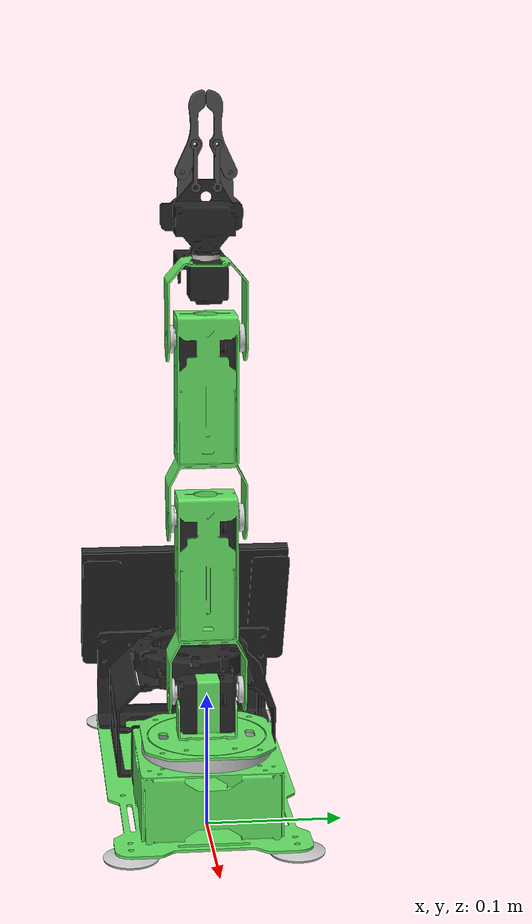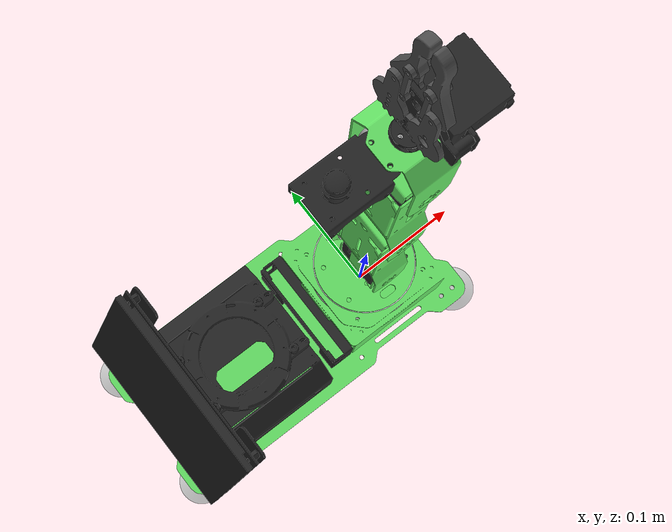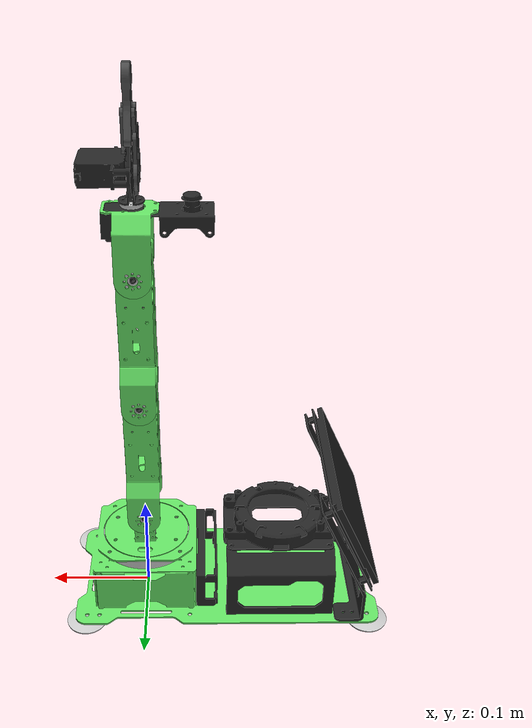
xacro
<?xml version="1.0"?>
<robot xmlns:xacro="http://www.ros.org/wiki/xacro" name="jetarm_6dof">
    <xacro:arg name="initial_positions_file" default="initial_positions.yaml" />

    <!-- Import jetarm_6dof urdf file -->
    <xacro:include filename="$(find jetarm_6dof_description)/urdf/jetarm_6dof_robot.urdf.xacro" />

    <!-- Import control_xacro -->
    <xacro:include filename="jetarm_6dof.ros2_control.xacro" />

    <xacro:jetarm_6dof_ros2_control name="FakeSystem" initial_positions_file="$(arg initial_positions_file)"/>

</robot>

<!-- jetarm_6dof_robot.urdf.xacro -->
<robot xmlns:xacro="http://www.ros.org/wiki/xacro" name="jetarm_6dof">
    <xacro:arg name="prefix" default=""/>

    <!-- 1. Core robot description - ALWAYS KEEP -->
    <xacro:include filename="$(find jetarm_6dof_description)/urdf/jetarm_6dof_description.urdf.xacro"/>
    <xacro:include filename="$(find jetarm_6dof_description)/urdf/materials.xacro"/>

    <!-- 2. REAL HARDWARE Transmission - NEW! -->
    <xacro:include filename="$(find jetarm_6dof_description)/urdf/jetarm.transmission.xacro" />

    <!-- Used for fixing robot to the "world" -->
    <link name="$(arg prefix)world"/>

    <!-- 3. Instantiate the robot -->
    <xacro:jetarm_6dof parent="$(arg prefix)world" prefix="$(arg prefix)">
    	<origin xyz="0 0 0" rpy="0 0 0"/>
    </xacro:jetarm_6dof>

    <!-- 4. Apply the REAL HARDWARE transmissions -->
    <xacro:jetarm_hardware_transmissions prefix="$(arg prefix)"/>
    <ros2_control name="JetArmSystem" type="system">
      <hardware>
        <plugin>jetarm_control/JetArmHardware</plugin>
        <param name="device">/dev/ttyCH341USB0</param>
        <param name="baudrate">1000000</param>
      </hardware>

      <!-- 6 个关节 -->
      <joint name="joint1">
        <command_interface name="position"/>
        <state_interface name="position"/>
        <state_interface name="velocity"/>
        <state_interface name="effort"/>
        <param name="servo_id">1</param>
        <param name="offset_ticks">500</param>
        <param name="scale">0.00418879</param>
        <param name="direction">1</param>
      </joint>

      <joint name="joint2">
        <command_interface name="position"/>
        <state_interface name="position"/>
        <state_interface name="velocity"/>
        <state_interface name="effort"/>
        <param name="servo_id">2</param>
        <param name="offset_ticks">500</param>
        <param name="scale">0.00418879</param>
        <param name="direction">1</param>
      </joint>

      <joint name="joint3">
        <command_interface name="position"/>
        <state_interface name="position"/>
        <state_interface name="velocity"/>
        <state_interface name="effort"/>
        <param name="servo_id">3</param>
        <param name="offset_ticks">500</param>
        <param name="scale">0.00418879</param>
        <param name="direction">1</param>
      </joint>

      <joint name="joint4">
        <command_interface name="position"/>
        <state_interface name="position"/>
        <state_interface name="velocity"/>
        <state_interface name="effort"/>
        <param name="servo_id">4</param>
        <param name="offset_ticks">500</param>
        <param name="scale">0.00418879</param>
        <param name="direction">1</param>
      </joint>

      <joint name="joint5">
        <command_interface name="position"/>
        <state_interface name="position"/>
        <state_interface name="velocity"/>
        <state_interface name="effort"/>
        <param name="servo_id">5</param>
        <param name="offset_ticks">500</param>
        <param name="scale">0.00418879</param>
        <param name="direction">1</param>
      </joint>

      <joint name="r_joint">
        <command_interface name="position"/>
        <state_interface name="position"/>
        <state_interface name="velocity"/>
        <state_interface name="effort"/>
        <param name="servo_id">10</param>
        <param name="offset_ticks">500</param>
        <param name="scale">0.00418879</param>
        <param name="direction">1</param>
      </joint>
    </ros2_control>
</robot>

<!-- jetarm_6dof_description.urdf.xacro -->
<robot xmlns:xacro="http://ros.org/wiki/xacro">
    <!-- parameters -->
    <xacro:property name="my_pi" value="3.1415926535897931"/>

    <!-- Joint properties -->
    <xacro:property name="joint_lower_limit" value="-${3.14}"/>
    <xacro:property name="joint_upper_limit" value="${3.14}"/>
    <xacro:property name="joint_effort" value="6.0"/>
    <xacro:property name="joint_velocity" value="0.524"/>
    <!-- COLORS -->
    <xacro:property name="jetarm_green" value="0.4 0.9 0.4 1.0"/>
    <xacro:property name="jetarm_black" value="0.15 0.15 0.15 1.0"/>

    <xacro:macro name="jetarm_6dof" params="prefix parent **origin">
        <joint name="${prefix}base_joint" type="fixed">
            <parent link="${parent}"/>
            <child link="${prefix}base_link"/>
	    <xacro:insert_block name="origin"/>
        </joint>
        <link name="${prefix}base_link">
            <visual>
		<origin xyz="0.0 0.0 0.0" rpy="0.0 0.0 ${-my_pi/2}"/>
                <geometry>
                    <mesh filename="package://jetarm_6dof_description/meshes/jetarm_6dof/JetArm_6DOF_BASE_GREEN.STL"
                          scale="0.001 0.001 0.001"/>
                </geometry>
                <material name="jetarm_green">
                    <color rgba="${jetarm_green}"/>
                </material>
            </visual>

            <visual>
		<origin xyz="0.0 0.0 0.0" rpy="0.0 0.0 ${-my_pi/2}"/>
                <geometry>
                    <mesh filename="package://jetarm_6dof_description/meshes/jetarm_6dof/JetArm_6DOF_BASE_BLACK.STL"
                          scale="0.001 0.001 0.001"/>
                </geometry>
                <material name="black">
                    <color rgba="${jetarm_black}"/>
                </material>
            </visual>

            <visual>
		<origin xyz="0.0 0.0 0.0" rpy="0.0 0.0 ${-my_pi/2}"/>
                <geometry>
                    <mesh filename="package://jetarm_6dof_description/meshes/jetarm_6dof/JetArm_6DOF_BASE_SCREEN.STL"
                          scale="0.001 0.001 0.001"/>
                </geometry>
                <material name="black">
                    <color rgba="${jetarm_black}"/>
                </material>
	    </visual>

            <visual>
		<origin xyz="0.0 0.0 0.0" rpy="0.0 0.0 ${-my_pi/2}"/>
                <geometry>
                    <mesh filename="package://jetarm_6dof_description/meshes/jetarm_6dof/JetArm_6DOF_BASE_WHITE.STL"
                          scale="0.001 0.001 0.001"/>
                </geometry>
                <material name="white">
                    <color rgba="0.8 0.8 0.8 1.0"/>
                </material>
            </visual>

            <collision>
		<origin xyz="0.0 0.0 0.0" rpy="0.0 0.0 ${-my_pi/2}"/>
                <geometry>
                    <mesh filename="package://jetarm_6dof_description/meshes/jetarm_6dof/JetArm_6DOF_BASE.STL"
                          scale="0.001 0.001 0.001"/>
                </geometry>
            </collision>
            <inertial>
		<origin xyz="0.0 0.0 0.0" rpy="0.0 0.0 ${-my_pi/2}"/>
                <mass value="0.1"/>
                <inertia ixx="1.0" ixy="0.0" ixz="0.0" iyy="1.0" iyz="0.0" izz="1.0"/>
            </inertial>
        </link>
        <joint name="${prefix}joint1" type="revolute">
            <parent link="${prefix}base_link"/>
            <child link="${prefix}link1"/>
	    <origin xyz="0.0 0.0 0.10314916202" rpy="0.0 0.0 0.0"/>
            <limit lower="-2.1" upper="2.1" effort="${joint_effort}" velocity="${joint_velocity}"/>
            <axis xyz="0 0 1"/>
        </joint>
        <link name="${prefix}link1">
            <visual>
                <origin xyz="0.0 0.0 0.0" rpy="0.0 0.0 0.0"/>
                <geometry>
                    <mesh filename="package://jetarm_6dof_description/meshes/jetarm_6dof/JetArm_6DOF_LINK1_BLACK.STL"
                          scale="0.001 0.001 0.001"/>
                </geometry>
                <material name="black">
                    <color rgba="${jetarm_black}"/>
                </material>
            </visual>
            <visual>
                <origin xyz="0.0 0.0 0.0" rpy="0.0 0.0 0.0"/>
                <geometry>
                    <mesh filename="package://jetarm_6dof_description/meshes/jetarm_6dof/JetArm_6DOF_LINK1_GREEN.STL"
                          scale="0.001 0.001 0.001"/>
                </geometry>
                <material name="jetarm_green">
                    <color rgba="${jetarm_green}"/>
                </material>
            </visual>

            <collision>
                <origin xyz="0.0 0.0 0.0" rpy="0.0 0.0 0.0"/>
                <geometry>
                    <mesh filename="package://jetarm_6dof_description/meshes/jetarm_6dof/JetArm_6DOF_LINK1.STL"
                          scale="0.001 0.001 0.001"/>
                </geometry>
            </collision>

            <inertial>
                <origin xyz="0.0 0.0 0.0" rpy="0.0 0.0 0.0"/>
                <mass value="0.001"/>
                <inertia ixx="1.0" ixy="0.0" ixz="0.0" iyy="1.0" iyz="0.0" izz="1.0"/>
            </inertial>
        </link>
        <joint name="${prefix}joint2" type="revolute">
            <parent link="${prefix}link1"/>
            <child link="${prefix}link2"/>
            <origin xyz="0.0 0.0 0.0" rpy="${my_pi/2} 0.0 0.0"/>
            <limit lower="-2.1" upper="2.1" effort="${joint_effort}" velocity="${joint_velocity}"/>
            <axis xyz="0 0 1"/>
        </joint>
        <link name="${prefix}link2">
            <visual>
                <origin xyz="0.0 0.0 0.0" rpy="0.0 0.0 0.0"/>
                <geometry>
                    <mesh filename="package://jetarm_6dof_description/meshes/jetarm_6dof/JetArm_6DOF_LINK2_GREEN.STL"
                          scale="0.001 0.001 0.001"/>
                </geometry>
                <material name="jetarm_green">
                    <color rgba="${jetarm_green}"/>
                </material>
            </visual>

            <visual>
                <origin xyz="0.0 0.0 0.0" rpy="0.0 0.0 0.0"/>
                <geometry>
                    <mesh filename="package://jetarm_6dof_description/meshes/jetarm_6dof/JetArm_6DOF_LINK2_WHITE.STL"
                          scale="0.001 0.001 0.001"/>
                </geometry>
                <material name="white">
                    <color rgba="0.8 0.8 0.8 1.0"/>
                </material>
            </visual>

            <visual>
                <origin xyz="0.0 0.0 0.0" rpy="0.0 0.0 0.0"/>
                <geometry>
                    <mesh filename="package://jetarm_6dof_description/meshes/jetarm_6dof/JetArm_6DOF_LINK2_BLACK.STL"
                          scale="0.001 0.001 0.001"/>
                </geometry>
                <material name="black">
                    <color rgba="${jetarm_black}"/>
                </material>
            </visual>

            <collision>
                <origin xyz="0.0 0.0 0.0" rpy="0.0 0.0 0.0"/>
                <geometry>
                    <mesh filename="package://jetarm_6dof_description/meshes/jetarm_6dof/JetArm_6DOF_LINK2.STL"
                          scale="0.001 0.001 0.001"/>
                </geometry>
            </collision>

            <inertial>
                <origin xyz="0.0 0.0 0.0" rpy="0.0 0.0 0.0"/>
                <mass value="0.001"/>
                <inertia ixx="1.0" ixy="0.0" ixz="0.0" iyy="1.0" iyz="0.0" izz="1.0"/>
            </inertial>
        </link>
        <joint name="${prefix}joint3" type="revolute">
            <parent link="${prefix}link2"/>
            <child link="${prefix}link3"/>
            <origin xyz="0.0 0.12941763737 0.0" rpy="0.0 0.0 0.0"/>
            <limit lower="-2.1" upper="2.1" effort="${joint_effort}" velocity="${joint_velocity}"/>
            <axis xyz="0 0 1"/>
        </joint>
        <link name="${prefix}link3">
            <visual>
                <origin xyz="0.0 0.0 0.0" rpy="0.0 0.0 0.0"/>
                <geometry>
                    <mesh filename="package://jetarm_6dof_description/meshes/jetarm_6dof/JetArm_6DOF_LINK3_GREEN.STL"
                          scale="0.001 0.001 0.001"/>
                </geometry>
                <material name="jetarm_green">
                    <color rgba="${jetarm_green}"/>
                </material>
            </visual>

            <visual>
                <origin xyz="0.0 0.0 0.0" rpy="0.0 0.0 0.0"/>
                <geometry>
                    <mesh filename="package://jetarm_6dof_description/meshes/jetarm_6dof/JetArm_6DOF_LINK3_WHITE.STL"
                          scale="0.001 0.001 0.001"/>
                </geometry>
                <material name="white">
                    <color rgba="0.8 0.8 0.8 1.0"/>
                </material>
            </visual>

            <visual>
                <origin xyz="0.0 0.0 0.0" rpy="0.0 0.0 0.0"/>
                <geometry>
                    <mesh filename="package://jetarm_6dof_description/meshes/jetarm_6dof/JetArm_6DOF_LINK3_BLACK.STL"
                          scale="0.001 0.001 0.001"/>
                </geometry>
                <material name="black">
                    <color rgba="${jetarm_black}"/>
                </material>
            </visual>

            <collision>
                <origin xyz="0.0 0.0 0.0" rpy="0.0 0.0 0.0"/>
                <geometry>
                    <mesh filename="package://jetarm_6dof_description/meshes/jetarm_6dof/JetArm_6DOF_LINK3.STL"
                          scale="0.001 0.001 0.001"/>
                </geometry>
            </collision>

            <inertial>
                <origin xyz="0.0 0.0 0.0" rpy="0.0 0.0 0.0"/>
                <mass value="0.001"/>
                <inertia ixx="1.0" ixy="0.0" ixz="0.0" iyy="1.0" iyz="0.0" izz="1.0"/>
            </inertial>
        </link>
        <joint name="${prefix}joint4" type="revolute">
            <parent link="${prefix}link3"/>
            <child link="${prefix}link4"/>
            <origin xyz="0.0 0.12941763737 0.0" rpy="0.0 0.0 0.0"/>
            <limit lower="-2.1" upper="2.1" effort="${joint_effort}" velocity="${joint_velocity}"/>
            <axis xyz="0 0 1"/>
        </joint>
        <link name="${prefix}link4">
            <visual>
                <origin xyz="0.0 0.0 0.0" rpy="0.0 0.0 0.0"/>
                <geometry>
                    <mesh filename="package://jetarm_6dof_description/meshes/jetarm_6dof/JetArm_6DOF_LINK4_USB_CAM_GREEN.STL"
                          scale="0.001 0.001 0.001"/>
                </geometry>
                <material name="jetarm_green">
                    <color rgba="${jetarm_green}"/>
                </material>
            </visual>

            <visual>
                <origin xyz="0.0 0.0 0.0" rpy="0.0 0.0 0.0"/>
                <geometry>
                    <mesh filename="package://jetarm_6dof_description/meshes/jetarm_6dof/JetArm_6DOF_LINK4_USB_CAM_WHITE.STL"
                          scale="0.001 0.001 0.001"/>
                </geometry>
                <material name="white">
                    <color rgba="0.8 0.8 0.8 1.0"/>
                </material>
            </visual>

            <visual>
                <origin xyz="0.0 0.0 0.0" rpy="0.0 0.0 0.0"/>
                <geometry>
                    <mesh filename="package://jetarm_6dof_description/meshes/jetarm_6dof/JetArm_6DOF_LINK4_USB_CAM_BLACK.STL"
                          scale="0.001 0.001 0.001"/>
                </geometry>
                <material name="black">
                    <color rgba="${jetarm_black}"/>
                </material>
            </visual>

            <collision>
                <origin xyz="0.0 0.0 0.0" rpy="0.0 0.0 0.0"/>
                <geometry>
                    <mesh filename="package://jetarm_6dof_description/meshes/jetarm_6dof/JetArm_6DOF_LINK4_USB_CAM.STL"
                          scale="0.001 0.001 0.001"/>
                </geometry>
            </collision>

            <inertial>
                <origin xyz="0.0 0.0 0.0" rpy="0.0 0.0 0.0"/>
                <mass value="0.001"/>
                <inertia ixx="1.0" ixy="0.0" ixz="0.0" iyy="1.0" iyz="0.0" izz="1.0"/>
            </inertial>
        </link>
        <joint name="${prefix}joint5" type="revolute">
            <parent link="${prefix}link4"/>
            <child link="${prefix}link5"/>
            <origin xyz="0.0 0.05945312631 0.0" rpy="${-my_pi/2} 0.0 0.0"/>
            <limit lower="-2.1" upper="2.1" effort="${joint_effort}" velocity="${joint_velocity}"/>
            <axis xyz="0 0 1"/>
        </joint>
        <link name="${prefix}link5">
            <visual>
                <origin xyz="0.0 0.0 0.0" rpy="0.0 0.0 0.0"/>
                <geometry>
                    <mesh filename="package://jetarm_6dof_description/meshes/jetarm_6dof/JetArm_6DOF_LINK5_WHITE.STL"
                          scale="0.001 0.001 0.001"/>
                </geometry>
                <material name="white">
                    <color rgba="0.8 0.8 0.8 1.0"/>
                </material>
            </visual>

            <collision>
                <origin xyz="0.0 0.0 0.0" rpy="0.0 0.0 0.0"/>
                <geometry>
                    <mesh filename="package://jetarm_6dof_description/meshes/jetarm_6dof/JetArm_6DOF_LINK5.STL"
                          scale="0.001 0.001 0.001"/>
                </geometry>
            </collision>

            <inertial>
                <origin xyz="0.0 0.0 0.0" rpy="0.0 0.0 0.0"/>
                <mass value="0.001"/>
                <inertia ixx="1.0" ixy="0.0" ixz="0.0" iyy="1.0" iyz="0.0" izz="1.0"/>
            </inertial>
        </link>
        <joint name="endpoint" type="fixed">
            <origin xyz="0 0 0.11054687369" rpy="0 0 0"/>
            <parent link="link5"/>
            <child link="endpoint"/>
            <axis xyz="0 0 0"/>
        </joint>
        <link name="endpoint"/>

        <link
                name="gripper_servo_link">
            <inertial>
                <origin xyz="0.00173398274658465 0.0143803550122597 0.0668818334351561" rpy="0 0 0"/>
                <mass value="0.0174988102544488"/>
                <inertia
                        ixx="1.57024155329016E-06"
                        ixy="2.76817630588513E-08"
                        ixz="2.23194266007272E-08"
                        iyy="4.12618454370932E-06"
                        iyz="3.03828124784084E-10"
                        izz="3.2611413740062E-06"/>
            </inertial>
            <visual>
                <origin xyz="0 0 0" rpy="0 0 0"/>
                <geometry>
                    <mesh filename="package://jetarm_6dof_description/meshes/Gripper_Base.STL" scale="0.001 0.001 0.001"/>
                </geometry>
                <material name="black">
                    <color rgba="${jetarm_black}"/>
                </material>
            </visual>
            <collision>
                <origin xyz="0 0 0" rpy="0 0 0"/>
                <geometry>
                    <mesh filename="package://jetarm_6dof_description/meshes/Gripper_Base.STL" scale="0.001 0.001 0.001"/>
                </geometry>
            </collision>
        </link>
        <joint name="gripper_servo_joint" type="fixed">
            <origin xyz="0 0 0" rpy="0 0 0"/>
            <parent link="link5"/>
            <child link="gripper_servo_link"/>
            <axis xyz="0 0 0"/>
        </joint>
        <xacro:include filename="$(find jetarm_6dof_description)/urdf/gripper.urdf.xacro"/>
    </xacro:macro>
</robot>

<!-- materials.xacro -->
<robot>
    <material name="black">
        <color rgba="0.3 0.3 0.3 1.0"/>
    </material>

    <material name="blue">
        <color rgba="0.0 0.0 0.8 1.0"/>
    </material>

    <material name="green">
        <color rgba="0.3 0.6 0.3 1.0"/>
    </material>

    <material name="gray">
        <color rgba="0.7 0.7 0.7 1.0"/>
    </material>

    <material name="darkgray">
        <color rgba="0.3 0.3 0.3 1.0"/>
    </material>

    <material name="red">
        <color rgba="0.8 0.0 0.0 1.0"/>
    </material>

    <material name="white">
        <color rgba="1.0 1.0 1.0 1.0"/>
    </material>

    <material name="yellow">
        <color rgba="0.8 0.8 0.0 1.0"/>
    </material>
</robot>

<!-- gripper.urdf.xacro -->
<robot name="gripper" xmlns:xacro="http://ros.org/wiki/xacro">
    <xacro:property name="M_PI" value="3.1415926535897931"/>
    <link name="r_link">
        <inertial>
            <origin xyz="0.000541257829657527 -0.00150000000696238 0.00625150798228247" rpy="0 0 0"/>
            <mass value="0.00001"/>
            <inertia
                    ixx="10"
                    ixy="0"
                    ixz="0"
                    iyy="10"
                    iyz="0"
                    izz="10"/>
        </inertial>
        <visual>
            <origin xyz="0 0 0" rpy="0 0 0"/>
            <geometry>
                <mesh filename="package://jetarm_6dof_description/meshes/gripper/r_link.stl"/>
            </geometry>
            <material name="black"/>
        </visual>
        <collision>
            <origin xyz="0 0 0" rpy="0 0 0"/>
            <geometry>
                <mesh filename="package://jetarm_6dof_description/meshes/gripper/r_link.stl"/>
            </geometry>
        </collision>
    </link>
    <joint name="r_joint" type="revolute">
        <origin xyz="-0.00704769 -0.01399984321 0.02700709328" rpy="0 0 ${M_PI / 2}"/>
        <parent link="gripper_servo_link"/>
        <child link="r_link"/>
        <axis xyz="0 -1 0"/>
        <limit
                lower="0"
                upper="1.57"
                effort="1000"
                velocity="2"/>
    </joint>
    <link name="l_link">
        <inertial>
            <origin xyz="0.0054115 -0.0015023 0.0058059" rpy="0 0 0"/>
            <mass value="0.00001"/>
            <inertia
                    ixx="10"
                    ixy="0"
                    ixz="0"
                    iyy="10"
                    iyz="0"
                    izz="10"/>
        </inertial>
        <visual>
            <origin xyz="0 0 0" rpy="0 0 0"/>
            <geometry>
                <mesh filename="package://jetarm_6dof_description/meshes/gripper/l_link.stl"/>
            </geometry>
            <material name="black"/>
        </visual>
        <collision>
            <origin xyz="0 0 0" rpy="0 0 0"/>
            <geometry>
                <mesh filename="package://jetarm_6dof_description/meshes/gripper/l_link.stl"/>
            </geometry>
        </collision>
    </link>
    <joint name="l_joint" type="revolute">
        <origin xyz="-0.0073115 0.01400015081 0.027008 " rpy="0 0 ${M_PI/2}"/>
        <parent link="gripper_servo_link"/>
        <child link="l_link"/>
        <axis xyz="0 -1 0"/>
        <limit
                lower="-1.57"
                upper="1.57"
                effort="1000"
                velocity="2"/>
        <mimic
                joint="r_joint"
                multiplier="-1"
                offset="0"/>
    </joint>
    <link name="r_in_link">
        <inertial>
            <origin xyz="-1.7319E-09 -0.006 0.0145" rpy="0 0 0"/>
            <mass value="0.00001"/>
            <inertia
                    ixx="10"
                    ixy="0"
                    ixz="0"
                    iyy="10"
                    iyz="0"
                    izz="10"/>
        </inertial>
        <visual>
            <origin xyz="0 0 0" rpy="0 0 0"/>
            <geometry>
                <mesh filename="package://jetarm_6dof_description/meshes/gripper/r_in_link.stl"/>
            </geometry>
            <material name="black"/>
        </visual>
        <collision>
            <origin xyz="0 0 0" rpy="0 0 0"/>
            <geometry>
                <mesh filename="package://jetarm_6dof_description/meshes/gripper/r_in_link.stl"/>
            </geometry>
        </collision>
    </link>
    <joint name="r_in_joint" type="revolute">
        <origin xyz="-0.0065253 -0.0075039 0.04599137946" rpy="0 0 ${M_PI/2}"/>
        <parent link="gripper_servo_link"/>
        <child link="r_in_link"/>
        <axis xyz="0 1 0"/>
        <mimic
                joint="r_joint"
                multiplier="-1"
                offset="0"/>
        <limit
                lower="-1.57"
                upper="1.57"
                effort="1000"
                velocity="2"/>
    </joint>
    <link name="r_out_link">
        <inertial>
            <origin xyz="-0.0013784 -0.0060519 0.0096418" rpy="0 0 0"/>
            <mass value="0.00001"/>
            <inertia
                    ixx="10"
                    ixy="0"
                    ixz="0"
                    iyy="10"
                    iyz="0"
                    izz="10"/>
        </inertial>
        <visual>
            <origin xyz="0 0 0" rpy="0 0 0"/>
            <geometry>
                <mesh filename="package://jetarm_6dof_description/meshes/gripper/r_out_link.stl"/>
            </geometry>
            <material name="black"/>
        </visual>
        <collision>
            <origin xyz="0 0 0" rpy="0 0 0"/>
            <geometry>
                <mesh filename="package://jetarm_6dof_description/meshes/gripper/r_out_link.stl"/>
            </geometry>
        </collision>
    </link>
    <joint name="r_out_joint" type="revolute">
        <origin xyz="0 0 0.029" rpy="0 0 0"/>
        <parent link="r_in_link"/>
        <child link="r_out_link"/>
        <axis xyz="0 1 0"/>
        <mimic
                joint="r_joint"
                multiplier="1"
                offset="0"/>
        <limit
                lower="-1.57"
                upper="1.57"
                effort="1000"
                velocity="2"/>
    </joint>
    <link name="l_in_link">
        <inertial>
            <origin xyz="-1.7319E-09 -0.006 0.0145" rpy="0 0 0"/>
            <mass value="0.00001"/>
            <inertia
                    ixx="10"
                    ixy="0"
                    ixz="0"
                    iyy="10"
                    iyz="0"
                    izz="10"/>
        </inertial>
        <visual>
            <origin xyz="0 0 0" rpy="0 0 0"/>
            <geometry>
                <mesh filename="package://jetarm_6dof_description/meshes/gripper/l_in_link.stl"/>
            </geometry>
            <material name="black"/>
        </visual>
        <collision>
            <origin xyz="0 0 0" rpy="0 0 0"/>
            <geometry>
                <mesh filename="package://jetarm_6dof_description/meshes/gripper/l_in_link.stl"/>
            </geometry>
        </collision>
    </link>
    <joint name="l_in_joint" type="revolute">
        <origin xyz="-0.0065053 0.0075039 0.04599108168" rpy="0 0 ${M_PI/2}"/>
        <parent link="gripper_servo_link"/>
        <child link="l_in_link"/>
        <axis xyz="0 -1 0"/>
        <mimic
                joint="r_joint"
                multiplier="-1"
                offset="0"/>
        <limit
                lower="-1.57"
                upper="1.57"
                effort="1000"
                velocity="2"/>
    </joint>
    <link name="l_out_link">
        <inertial>
            <origin xyz="0.0013784 -0.0060519 0.0096418" rpy="0 0 0"/>
            <mass value="0.00001"/>
            <inertia
                    ixx="10"
                    ixy="0"
                    ixz="0"
                    iyy="10"
                    iyz="0"
                    izz="10"/>
        </inertial>
        <visual>
            <origin xyz="0 0 0" rpy="0 0 0"/>
            <geometry>
                <mesh filename="package://jetarm_6dof_description/meshes/gripper/l_out_link.stl"/>
            </geometry>
            <material name="black"/>
        </visual>
        <collision>
            <origin xyz="0 0 0" rpy="0 0 0"/>
            <geometry>
                <mesh filename="package://jetarm_6dof_description/meshes/gripper/l_out_link.stl"/>
            </geometry>
        </collision>
    </link>
    <joint name="l_out_joint" type="revolute">
        <origin xyz="0 0 0.029" rpy="0 0 0"/>
        <parent link="l_in_link"/>
        <child link="l_out_link"/>
        <axis xyz="0 -1 0"/>
        <mimic
                joint="r_joint"
                multiplier="1"
                offset="0"/>
        <limit
                lower="-1.57"
                upper="1.57"
                effort="1000"
                velocity="2"/>
    </joint>
</robot>
